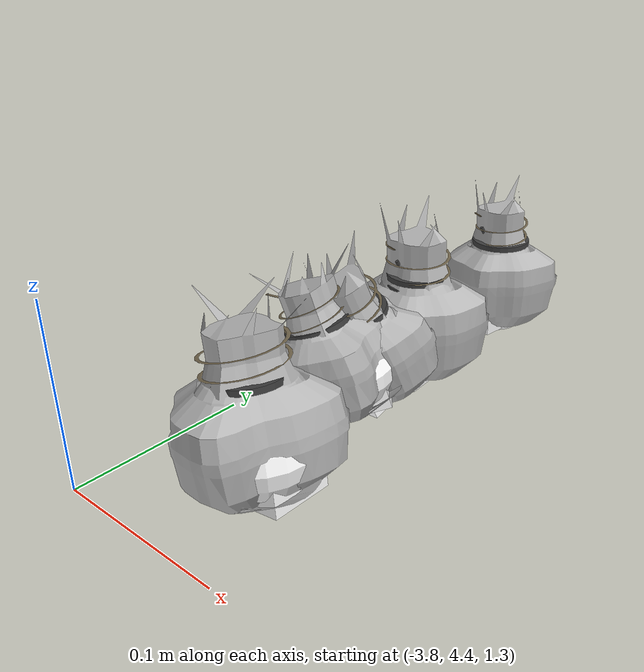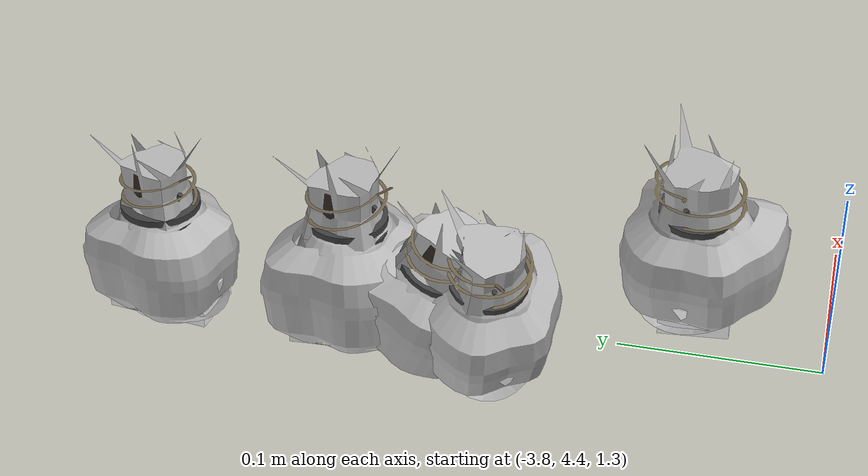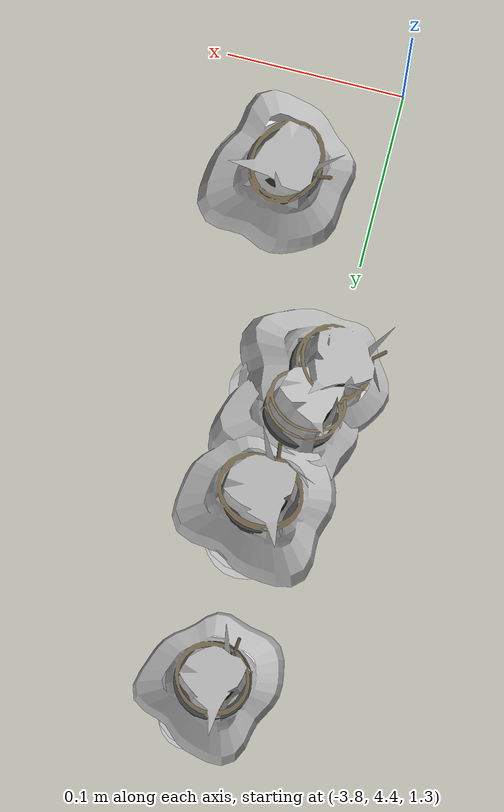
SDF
<sdf version="1.11">
 <world name="peach_orchard">
  <model name="ground">
   <static>true</static>
   <link name="link">
    <visual name="soil">
     <geometry><plane><normal>0 0 1</normal><size>32 22</size></plane></geometry>
     <material>
      <ambient>1 1 1 1</ambient>
      <diffuse>1 1 1 1</diffuse>
      <specular>0.1 0.1 0.1 1</specular>
      <pbr>
       <metal>
        <albedo_map>textures/soil_albedo.png</albedo_map>
        <normal_map type="tangent">textures/soil_normal.png</normal_map>
        <roughness>0.95</roughness>
        <metalness>0</metalness>
       </metal>
      </pbr>
     </material>
    </visual>
    <collision name="c_soil">
     <geometry><plane><normal>0 0 1</normal><size>32 22</size></plane></geometry>
    </collision>
   </link>
  </model>
  <model name="peach_tree_r1_t5_06">
   <pose>-3.74205 4.46683 1.29059 0 0.128358 2.82552</pose>
   <static>true</static>
   <link name="bag">
    <visual name="bag_mesh">
     <pose>0 0 0.042877 0 0 0</pose>
     <geometry>
      <mesh><uri>model://peach_sim/meshes/bagged_peach.glb</uri><scale>0.974008 1.20422 0.974477</scale></mesh>
     </geometry>
    </visual>
    <visual name="body">
     <pose>0 0 0.024877 0 0 0</pose>
     <geometry><ellipsoid><radii>0.0365253 0.0313096 0.0268671</radii></ellipsoid></geometry>
     <material>
      <ambient>1 1 1 1</ambient>
      <diffuse>1 1 1 1</diffuse>
      <specular>0.1 0.1 0.1 1</specular>
      <pbr>
       <metal>
        <albedo_map>textures/paper_bag_albedo.png</albedo_map>
        <normal_map type="tangent">textures/paper_bag_normal.png</normal_map>
        <roughness>0.72</roughness>
        <metalness>0</metalness>
       </metal>
      </pbr>
     </material>
    </visual>
    <visual name="bottom_fold">
     <pose>0 0 0.012 0 0 0.35</pose>
     <geometry><box><size>0.0566142 0.0360061 0.022</size></box></geometry>
     <material>
      <ambient>1 1 1 1</ambient>
      <diffuse>1 1 1 1</diffuse>
      <specular>0.1 0.1 0.1 1</specular>
      <pbr>
       <metal>
        <albedo_map>textures/paper_bag_albedo.png</albedo_map>
        <normal_map type="tangent">textures/paper_bag_normal.png</normal_map>
        <roughness>0.8</roughness>
        <metalness>0</metalness>
       </metal>
      </pbr>
     </material>
    </visual>
    <visual name="fruit">
     <pose>0 0 0.0201019 0 0 0</pose>
     <geometry><sphere><radius>0.027146</radius></sphere></geometry>
     <material>
      <ambient>1 1 1 1</ambient>
      <diffuse>1 1 1 1</diffuse>
      <specular>0.1 0.1 0.1 1</specular>
      <pbr>
       <metal>
        <albedo_map>textures/fruit_skin_albedo.png</albedo_map>
        <normal_map type="tangent">textures/fruit_skin_normal.png</normal_map>
        <roughness>0.55</roughness>
        <metalness>0</metalness>
       </metal>
      </pbr>
     </material>
    </visual>
    <visual name="neck">
     <pose>0 0 0.0587539 0 0 0</pose>
     <geometry><cylinder><radius>0.013</radius><length>0.018</length></cylinder></geometry>
     <material>
      <ambient>1 1 1 1</ambient>
      <diffuse>1 1 1 1</diffuse>
      <specular>0.1 0.1 0.1 1</specular>
      <pbr>
       <metal>
        <albedo_map>textures/paper_bag_albedo.png</albedo_map>
        <normal_map type="tangent">textures/paper_bag_normal.png</normal_map>
        <roughness>0.75</roughness>
        <metalness>0</metalness>
       </metal>
      </pbr>
     </material>
    </visual>
    <visual name="gather">
     <pose>0 0 0.0397539 0 0 0</pose>
     <geometry><cylinder><radius>0.019</radius><length>0.02</length></cylinder></geometry>
     <material>
      <ambient>1 1 1 1</ambient>
      <diffuse>1 1 1 1</diffuse>
      <specular>0.1 0.1 0.1 1</specular>
      <pbr>
       <metal>
        <albedo_map>textures/paper_bag_albedo.png</albedo_map>
        <normal_map type="tangent">textures/paper_bag_normal.png</normal_map>
        <roughness>0.8</roughness>
        <metalness>0</metalness>
       </metal>
      </pbr>
     </material>
    </visual>
    <visual name="inner_paper">
     <pose>0 0 0.0637539 0 0 0</pose>
     <geometry><cylinder><radius>0.01</radius><length>0.008</length></cylinder></geometry>
     <material>
      <ambient>0.180392 0.14902 0.133333 1</ambient>
      <diffuse>0.180392 0.14902 0.133333 1</diffuse>
      <specular>0.1 0.1 0.1 1</specular>
     </material>
    </visual>
    <visual name="wire_0">
     <pose>0 0 0.0537539 0 0 0</pose>
     <geometry><cylinder><radius>0.0205</radius><length>0.0035</length></cylinder></geometry>
     <material>
      <ambient>0.25 0.25 0.25 1</ambient>
      <diffuse>0.25 0.25 0.25 1</diffuse>
      <specular>0.1 0.1 0.1 1</specular>
     </material>
    </visual>
    <visual name="wire_1">
     <pose>0 0 0.0607539 0 0 0</pose>
     <geometry><cylinder><radius>0.0205</radius><length>0.0035</length></cylinder></geometry>
     <material>
      <ambient>0.25 0.25 0.25 1</ambient>
      <diffuse>0.25 0.25 0.25 1</diffuse>
      <specular>0.1 0.1 0.1 1</specular>
     </material>
    </visual>
    <visual name="wire_tail">
     <pose>0.01 0 0.0617539 0 0.521618 0</pose>
     <geometry><cylinder><radius>0.0012</radius><length>0.026</length></cylinder></geometry>
     <material>
      <ambient>0.25 0.25 0.25 1</ambient>
      <diffuse>0.25 0.25 0.25 1</diffuse>
      <specular>0.1 0.1 0.1 1</specular>
     </material>
    </visual>
    <collision name="c_body">
     <pose>0 0 0.024877 0 0 0</pose>
     <geometry><cylinder><radius>0.0365253</radius><length>0.0497539</length></cylinder></geometry>
    </collision>
   </link>
  </model>
  <model name="peach_tree_r1_t5_07">
   <pose>-3.78 4.57187 1.27 0 0.312879 -2.78257</pose>
   <static>true</static>
   <link name="bag">
    <visual name="bag_mesh">
     <pose>0 0 0.0421741 0 0 -0</pose>
     <geometry>
      <mesh><uri>model://peach_sim/meshes/bagged_peach.glb</uri><scale>1.01668 1.10082 0.958502</scale></mesh>
     </geometry>
    </visual>
    <visual name="body">
     <pose>0 0 0.0241741 0 0 0</pose>
     <geometry><ellipsoid><radii>0.0381256 0.0286213 0.026108</radii></ellipsoid></geometry>
     <material>
      <ambient>1 1 1 1</ambient>
      <diffuse>1 1 1 1</diffuse>
      <specular>0.1 0.1 0.1 1</specular>
      <pbr>
       <metal>
        <albedo_map>textures/paper_bag_albedo.png</albedo_map>
        <normal_map type="tangent">textures/paper_bag_normal.png</normal_map>
        <roughness>0.72</roughness>
        <metalness>0</metalness>
       </metal>
      </pbr>
     </material>
    </visual>
    <visual name="bottom_fold">
     <pose>0 0 0.012 0 0 0.35</pose>
     <geometry><box><size>0.0590947 0.0329145 0.022</size></box></geometry>
     <material>
      <ambient>1 1 1 1</ambient>
      <diffuse>1 1 1 1</diffuse>
      <specular>0.1 0.1 0.1 1</specular>
      <pbr>
       <metal>
        <albedo_map>textures/paper_bag_albedo.png</albedo_map>
        <normal_map type="tangent">textures/paper_bag_normal.png</normal_map>
        <roughness>0.8</roughness>
        <metalness>0</metalness>
       </metal>
      </pbr>
     </material>
    </visual>
    <visual name="fruit">
     <pose>0 0 0.0170924 0 0 0</pose>
     <geometry><sphere><radius>0.0240161</radius></sphere></geometry>
     <material>
      <ambient>1 1 1 1</ambient>
      <diffuse>1 1 1 1</diffuse>
      <specular>0.1 0.1 0.1 1</specular>
      <pbr>
       <metal>
        <albedo_map>textures/fruit_skin_albedo.png</albedo_map>
        <normal_map type="tangent">textures/fruit_skin_normal.png</normal_map>
        <roughness>0.55</roughness>
        <metalness>0</metalness>
       </metal>
      </pbr>
     </material>
    </visual>
    <visual name="neck">
     <pose>0 0 0.0573482 0 0 0</pose>
     <geometry><cylinder><radius>0.013</radius><length>0.018</length></cylinder></geometry>
     <material>
      <ambient>1 1 1 1</ambient>
      <diffuse>1 1 1 1</diffuse>
      <specular>0.1 0.1 0.1 1</specular>
      <pbr>
       <metal>
        <albedo_map>textures/paper_bag_albedo.png</albedo_map>
        <normal_map type="tangent">textures/paper_bag_normal.png</normal_map>
        <roughness>0.75</roughness>
        <metalness>0</metalness>
       </metal>
      </pbr>
     </material>
    </visual>
    <visual name="gather">
     <pose>0 0 0.0383482 0 0 0</pose>
     <geometry><cylinder><radius>0.019</radius><length>0.02</length></cylinder></geometry>
     <material>
      <ambient>1 1 1 1</ambient>
      <diffuse>1 1 1 1</diffuse>
      <specular>0.1 0.1 0.1 1</specular>
      <pbr>
       <metal>
        <albedo_map>textures/paper_bag_albedo.png</albedo_map>
        <normal_map type="tangent">textures/paper_bag_normal.png</normal_map>
        <roughness>0.8</roughness>
        <metalness>0</metalness>
       </metal>
      </pbr>
     </material>
    </visual>
    <visual name="inner_paper">
     <pose>0 0 0.0623482 0 0 0</pose>
     <geometry><cylinder><radius>0.01</radius><length>0.008</length></cylinder></geometry>
     <material>
      <ambient>0.180392 0.14902 0.133333 1</ambient>
      <diffuse>0.180392 0.14902 0.133333 1</diffuse>
      <specular>0.1 0.1 0.1 1</specular>
     </material>
    </visual>
    <visual name="wire_0">
     <pose>0 0 0.0523482 0 0 0</pose>
     <geometry><cylinder><radius>0.0205</radius><length>0.0035</length></cylinder></geometry>
     <material>
      <ambient>0.25 0.25 0.25 1</ambient>
      <diffuse>0.25 0.25 0.25 1</diffuse>
      <specular>0.1 0.1 0.1 1</specular>
     </material>
    </visual>
    <visual name="wire_1">
     <pose>0 0 0.0593482 0 0 0</pose>
     <geometry><cylinder><radius>0.0205</radius><length>0.0035</length></cylinder></geometry>
     <material>
      <ambient>0.25 0.25 0.25 1</ambient>
      <diffuse>0.25 0.25 0.25 1</diffuse>
      <specular>0.1 0.1 0.1 1</specular>
     </material>
    </visual>
    <visual name="wire_tail">
     <pose>0.01 0 0.0603482 0 0.521618 0</pose>
     <geometry><cylinder><radius>0.0012</radius><length>0.026</length></cylinder></geometry>
     <material>
      <ambient>0.25 0.25 0.25 1</ambient>
      <diffuse>0.25 0.25 0.25 1</diffuse>
      <specular>0.1 0.1 0.1 1</specular>
     </material>
    </visual>
    <collision name="c_body">
     <pose>0 0 0.0241741 0 0 0</pose>
     <geometry><cylinder><radius>0.0381256</radius><length>0.0483482</length></cylinder></geometry>
    </collision>
   </link>
  </model>
  <model name="peach_tree_r1_t5_08">
   <pose>-3.78 4.61267 1.27 0 0.381806 -2.00979</pose>
   <static>true</static>
   <link name="bag">
    <visual name="bag_mesh">
     <pose>0 0 0.0423189 0 0 -0</pose>
     <geometry>
      <mesh><uri>model://peach_sim/meshes/bagged_peach.glb</uri><scale>0.959311 1.08662 0.961794</scale></mesh>
     </geometry>
    </visual>
    <visual name="body">
     <pose>0 0 0.0243189 0 0 0</pose>
     <geometry><ellipsoid><radii>0.0359742 0.0282522 0.0262645</radii></ellipsoid></geometry>
     <material>
      <ambient>1 1 1 1</ambient>
      <diffuse>1 1 1 1</diffuse>
      <specular>0.1 0.1 0.1 1</specular>
      <pbr>
       <metal>
        <albedo_map>textures/paper_bag_albedo.png</albedo_map>
        <normal_map type="tangent">textures/paper_bag_normal.png</normal_map>
        <roughness>0.72</roughness>
        <metalness>0</metalness>
       </metal>
      </pbr>
     </material>
    </visual>
    <visual name="bottom_fold">
     <pose>0 0 0.012 0 0 0.35</pose>
     <geometry><box><size>0.0557599 0.03249 0.022</size></box></geometry>
     <material>
      <ambient>1 1 1 1</ambient>
      <diffuse>1 1 1 1</diffuse>
      <specular>0.1 0.1 0.1 1</specular>
      <pbr>
       <metal>
        <albedo_map>textures/paper_bag_albedo.png</albedo_map>
        <normal_map type="tangent">textures/paper_bag_normal.png</normal_map>
        <roughness>0.8</roughness>
        <metalness>0</metalness>
       </metal>
      </pbr>
     </material>
    </visual>
    <visual name="fruit">
     <pose>0 0 0.0197098 0 0 0</pose>
     <geometry><sphere><radius>0.0267382</radius></sphere></geometry>
     <material>
      <ambient>1 1 1 1</ambient>
      <diffuse>1 1 1 1</diffuse>
      <specular>0.1 0.1 0.1 1</specular>
      <pbr>
       <metal>
        <albedo_map>textures/fruit_skin_albedo.png</albedo_map>
        <normal_map type="tangent">textures/fruit_skin_normal.png</normal_map>
        <roughness>0.55</roughness>
        <metalness>0</metalness>
       </metal>
      </pbr>
     </material>
    </visual>
    <visual name="neck">
     <pose>0 0 0.0576379 0 0 0</pose>
     <geometry><cylinder><radius>0.013</radius><length>0.018</length></cylinder></geometry>
     <material>
      <ambient>1 1 1 1</ambient>
      <diffuse>1 1 1 1</diffuse>
      <specular>0.1 0.1 0.1 1</specular>
      <pbr>
       <metal>
        <albedo_map>textures/paper_bag_albedo.png</albedo_map>
        <normal_map type="tangent">textures/paper_bag_normal.png</normal_map>
        <roughness>0.75</roughness>
        <metalness>0</metalness>
       </metal>
      </pbr>
     </material>
    </visual>
    <visual name="gather">
     <pose>0 0 0.0386379 0 0 0</pose>
     <geometry><cylinder><radius>0.019</radius><length>0.02</length></cylinder></geometry>
     <material>
      <ambient>1 1 1 1</ambient>
      <diffuse>1 1 1 1</diffuse>
      <specular>0.1 0.1 0.1 1</specular>
      <pbr>
       <metal>
        <albedo_map>textures/paper_bag_albedo.png</albedo_map>
        <normal_map type="tangent">textures/paper_bag_normal.png</normal_map>
        <roughness>0.8</roughness>
        <metalness>0</metalness>
       </metal>
      </pbr>
     </material>
    </visual>
    <visual name="inner_paper">
     <pose>0 0 0.0626379 0 0 0</pose>
     <geometry><cylinder><radius>0.01</radius><length>0.008</length></cylinder></geometry>
     <material>
      <ambient>0.180392 0.14902 0.133333 1</ambient>
      <diffuse>0.180392 0.14902 0.133333 1</diffuse>
      <specular>0.1 0.1 0.1 1</specular>
     </material>
    </visual>
    <visual name="wire_0">
     <pose>0 0 0.0526379 0 0 0</pose>
     <geometry><cylinder><radius>0.0205</radius><length>0.0035</length></cylinder></geometry>
     <material>
      <ambient>0.25 0.25 0.25 1</ambient>
      <diffuse>0.25 0.25 0.25 1</diffuse>
      <specular>0.1 0.1 0.1 1</specular>
     </material>
    </visual>
    <visual name="wire_1">
     <pose>0 0 0.0596379 0 0 0</pose>
     <geometry><cylinder><radius>0.0205</radius><length>0.0035</length></cylinder></geometry>
     <material>
      <ambient>0.25 0.25 0.25 1</ambient>
      <diffuse>0.25 0.25 0.25 1</diffuse>
      <specular>0.1 0.1 0.1 1</specular>
     </material>
    </visual>
    <visual name="wire_tail">
     <pose>0.01 0 0.0606379 0 0.521618 0</pose>
     <geometry><cylinder><radius>0.0012</radius><length>0.026</length></cylinder></geometry>
     <material>
      <ambient>0.25 0.25 0.25 1</ambient>
      <diffuse>0.25 0.25 0.25 1</diffuse>
      <specular>0.1 0.1 0.1 1</specular>
     </material>
    </visual>
    <collision name="c_body">
     <pose>0 0 0.0243189 0 0 0</pose>
     <geometry><cylinder><radius>0.0359742</radius><length>0.0486379</length></cylinder></geometry>
    </collision>
   </link>
  </model>
  <model name="peach_tree_r1_t5_09">
   <pose>-3.78 4.64235 1.27 0 0.00548127 -1.85115</pose>
   <static>true</static>
   <link name="bag">
    <visual name="bag_mesh">
     <pose>0 0 0.0472509 0 0 -0</pose>
     <geometry>
      <mesh><uri>model://peach_sim/meshes/bagged_peach.glb</uri><scale>0.998154 1.20946 1.07388</scale></mesh>
     </geometry>
    </visual>
    <visual name="body">
     <pose>0 0 0.0292509 0 0 0</pose>
     <geometry><ellipsoid><radii>0.0374308 0.0314459 0.031591</radii></ellipsoid></geometry>
     <material>
      <ambient>1 1 1 1</ambient>
      <diffuse>1 1 1 1</diffuse>
      <specular>0.1 0.1 0.1 1</specular>
      <pbr>
       <metal>
        <albedo_map>textures/paper_bag_albedo.png</albedo_map>
        <normal_map type="tangent">textures/paper_bag_normal.png</normal_map>
        <roughness>0.72</roughness>
        <metalness>0</metalness>
       </metal>
      </pbr>
     </material>
    </visual>
    <visual name="bottom_fold">
     <pose>0 0 0.012 0 0 0.35</pose>
     <geometry><box><size>0.0580177 0.0361627 0.022</size></box></geometry>
     <material>
      <ambient>1 1 1 1</ambient>
      <diffuse>1 1 1 1</diffuse>
      <specular>0.1 0.1 0.1 1</specular>
      <pbr>
       <metal>
        <albedo_map>textures/paper_bag_albedo.png</albedo_map>
        <normal_map type="tangent">textures/paper_bag_normal.png</normal_map>
        <roughness>0.8</roughness>
        <metalness>0</metalness>
       </metal>
      </pbr>
     </material>
    </visual>
    <visual name="fruit">
     <pose>0 0 0.0205344 0 0 0</pose>
     <geometry><sphere><radius>0.0275958</radius></sphere></geometry>
     <material>
      <ambient>1 1 1 1</ambient>
      <diffuse>1 1 1 1</diffuse>
      <specular>0.1 0.1 0.1 1</specular>
      <pbr>
       <metal>
        <albedo_map>textures/fruit_skin_albedo.png</albedo_map>
        <normal_map type="tangent">textures/fruit_skin_normal.png</normal_map>
        <roughness>0.55</roughness>
        <metalness>0</metalness>
       </metal>
      </pbr>
     </material>
    </visual>
    <visual name="neck">
     <pose>0 0 0.0675019 0 0 0</pose>
     <geometry><cylinder><radius>0.013</radius><length>0.018</length></cylinder></geometry>
     <material>
      <ambient>1 1 1 1</ambient>
      <diffuse>1 1 1 1</diffuse>
      <specular>0.1 0.1 0.1 1</specular>
      <pbr>
       <metal>
        <albedo_map>textures/paper_bag_albedo.png</albedo_map>
        <normal_map type="tangent">textures/paper_bag_normal.png</normal_map>
        <roughness>0.75</roughness>
        <metalness>0</metalness>
       </metal>
      </pbr>
     </material>
    </visual>
    <visual name="gather">
     <pose>0 0 0.0485019 0 0 0</pose>
     <geometry><cylinder><radius>0.019</radius><length>0.02</length></cylinder></geometry>
     <material>
      <ambient>1 1 1 1</ambient>
      <diffuse>1 1 1 1</diffuse>
      <specular>0.1 0.1 0.1 1</specular>
      <pbr>
       <metal>
        <albedo_map>textures/paper_bag_albedo.png</albedo_map>
        <normal_map type="tangent">textures/paper_bag_normal.png</normal_map>
        <roughness>0.8</roughness>
        <metalness>0</metalness>
       </metal>
      </pbr>
     </material>
    </visual>
    <visual name="inner_paper">
     <pose>0 0 0.0725019 0 0 0</pose>
     <geometry><cylinder><radius>0.01</radius><length>0.008</length></cylinder></geometry>
     <material>
      <ambient>0.180392 0.14902 0.133333 1</ambient>
      <diffuse>0.180392 0.14902 0.133333 1</diffuse>
      <specular>0.1 0.1 0.1 1</specular>
     </material>
    </visual>
    <visual name="wire_0">
     <pose>0 0 0.0625019 0 0 0</pose>
     <geometry><cylinder><radius>0.0205</radius><length>0.0035</length></cylinder></geometry>
     <material>
      <ambient>0.25 0.25 0.25 1</ambient>
      <diffuse>0.25 0.25 0.25 1</diffuse>
      <specular>0.1 0.1 0.1 1</specular>
     </material>
    </visual>
    <visual name="wire_1">
     <pose>0 0 0.0695019 0 0 0</pose>
     <geometry><cylinder><radius>0.0205</radius><length>0.0035</length></cylinder></geometry>
     <material>
      <ambient>0.25 0.25 0.25 1</ambient>
      <diffuse>0.25 0.25 0.25 1</diffuse>
      <specular>0.1 0.1 0.1 1</specular>
     </material>
    </visual>
    <visual name="wire_tail">
     <pose>0.01 0 0.0705019 0 0.521618 0</pose>
     <geometry><cylinder><radius>0.0012</radius><length>0.026</length></cylinder></geometry>
     <material>
      <ambient>0.25 0.25 0.25 1</ambient>
      <diffuse>0.25 0.25 0.25 1</diffuse>
      <specular>0.1 0.1 0.1 1</specular>
     </material>
    </visual>
    <collision name="c_body">
     <pose>0 0 0.0292509 0 0 0</pose>
     <geometry><cylinder><radius>0.0374308</radius><length>0.0585019</length></cylinder></geometry>
    </collision>
   </link>
  </model>
  <model name="peach_tree_r1_t5_10">
   <pose>-3.78 4.74216 1.27 0 0.00276497 -2.05089</pose>
   <static>true</static>
   <link name="bag">
    <visual name="bag_mesh">
     <pose>0 0 0.0442338 0 0 -0</pose>
     <geometry>
      <mesh><uri>model://peach_sim/meshes/bagged_peach.glb</uri><scale>0.948866 1.02881 1.00531</scale></mesh>
     </geometry>
    </visual>
    <visual name="body">
     <pose>0 0 0.0262338 0 0 0</pose>
     <geometry><ellipsoid><radii>0.0355825 0.0267489 0.0283325</radii></ellipsoid></geometry>
     <material>
      <ambient>1 1 1 1</ambient>
      <diffuse>1 1 1 1</diffuse>
      <specular>0.1 0.1 0.1 1</specular>
      <pbr>
       <metal>
        <albedo_map>textures/paper_bag_albedo.png</albedo_map>
        <normal_map type="tangent">textures/paper_bag_normal.png</normal_map>
        <roughness>0.72</roughness>
        <metalness>0</metalness>
       </metal>
      </pbr>
     </material>
    </visual>
    <visual name="bottom_fold">
     <pose>0 0 0.012 0 0 0.35</pose>
     <geometry><box><size>0.0551529 0.0307613 0.022</size></box></geometry>
     <material>
      <ambient>1 1 1 1</ambient>
      <diffuse>1 1 1 1</diffuse>
      <specular>0.1 0.1 0.1 1</specular>
      <pbr>
       <metal>
        <albedo_map>textures/paper_bag_albedo.png</albedo_map>
        <normal_map type="tangent">textures/paper_bag_normal.png</normal_map>
        <roughness>0.8</roughness>
        <metalness>0</metalness>
       </metal>
      </pbr>
     </material>
    </visual>
    <visual name="fruit">
     <pose>0 0 0.0196461 0 0 0</pose>
     <geometry><sphere><radius>0.026672</radius></sphere></geometry>
     <material>
      <ambient>1 1 1 1</ambient>
      <diffuse>1 1 1 1</diffuse>
      <specular>0.1 0.1 0.1 1</specular>
      <pbr>
       <metal>
        <albedo_map>textures/fruit_skin_albedo.png</albedo_map>
        <normal_map type="tangent">textures/fruit_skin_normal.png</normal_map>
        <roughness>0.55</roughness>
        <metalness>0</metalness>
       </metal>
      </pbr>
     </material>
    </visual>
    <visual name="neck">
     <pose>0 0 0.0614676 0 0 0</pose>
     <geometry><cylinder><radius>0.013</radius><length>0.018</length></cylinder></geometry>
     <material>
      <ambient>1 1 1 1</ambient>
      <diffuse>1 1 1 1</diffuse>
      <specular>0.1 0.1 0.1 1</specular>
      <pbr>
       <metal>
        <albedo_map>textures/paper_bag_albedo.png</albedo_map>
        <normal_map type="tangent">textures/paper_bag_normal.png</normal_map>
        <roughness>0.75</roughness>
        <metalness>0</metalness>
       </metal>
      </pbr>
     </material>
    </visual>
    <visual name="gather">
     <pose>0 0 0.0424676 0 0 0</pose>
     <geometry><cylinder><radius>0.019</radius><length>0.02</length></cylinder></geometry>
     <material>
      <ambient>1 1 1 1</ambient>
      <diffuse>1 1 1 1</diffuse>
      <specular>0.1 0.1 0.1 1</specular>
      <pbr>
       <metal>
        <albedo_map>textures/paper_bag_albedo.png</albedo_map>
        <normal_map type="tangent">textures/paper_bag_normal.png</normal_map>
        <roughness>0.8</roughness>
        <metalness>0</metalness>
       </metal>
      </pbr>
     </material>
    </visual>
    <visual name="inner_paper">
     <pose>0 0 0.0664676 0 0 0</pose>
     <geometry><cylinder><radius>0.01</radius><length>0.008</length></cylinder></geometry>
     <material>
      <ambient>0.180392 0.14902 0.133333 1</ambient>
      <diffuse>0.180392 0.14902 0.133333 1</diffuse>
      <specular>0.1 0.1 0.1 1</specular>
     </material>
    </visual>
    <visual name="wire_0">
     <pose>0 0 0.0564676 0 0 0</pose>
     <geometry><cylinder><radius>0.0205</radius><length>0.0035</length></cylinder></geometry>
     <material>
      <ambient>0.25 0.25 0.25 1</ambient>
      <diffuse>0.25 0.25 0.25 1</diffuse>
      <specular>0.1 0.1 0.1 1</specular>
     </material>
    </visual>
    <visual name="wire_1">
     <pose>0 0 0.0634676 0 0 0</pose>
     <geometry><cylinder><radius>0.0205</radius><length>0.0035</length></cylinder></geometry>
     <material>
      <ambient>0.25 0.25 0.25 1</ambient>
      <diffuse>0.25 0.25 0.25 1</diffuse>
      <specular>0.1 0.1 0.1 1</specular>
     </material>
    </visual>
    <visual name="wire_tail">
     <pose>0.01 0 0.0644676 0 0.521618 0</pose>
     <geometry><cylinder><radius>0.0012</radius><length>0.026</length></cylinder></geometry>
     <material>
      <ambient>0.25 0.25 0.25 1</ambient>
      <diffuse>0.25 0.25 0.25 1</diffuse>
      <specular>0.1 0.1 0.1 1</specular>
     </material>
    </visual>
    <collision name="c_body">
     <pose>0 0 0.0262338 0 0 0</pose>
     <geometry><cylinder><radius>0.0355825</radius><length>0.0524676</length></cylinder></geometry>
    </collision>
   </link>
  </model>
 </world>
</sdf>
